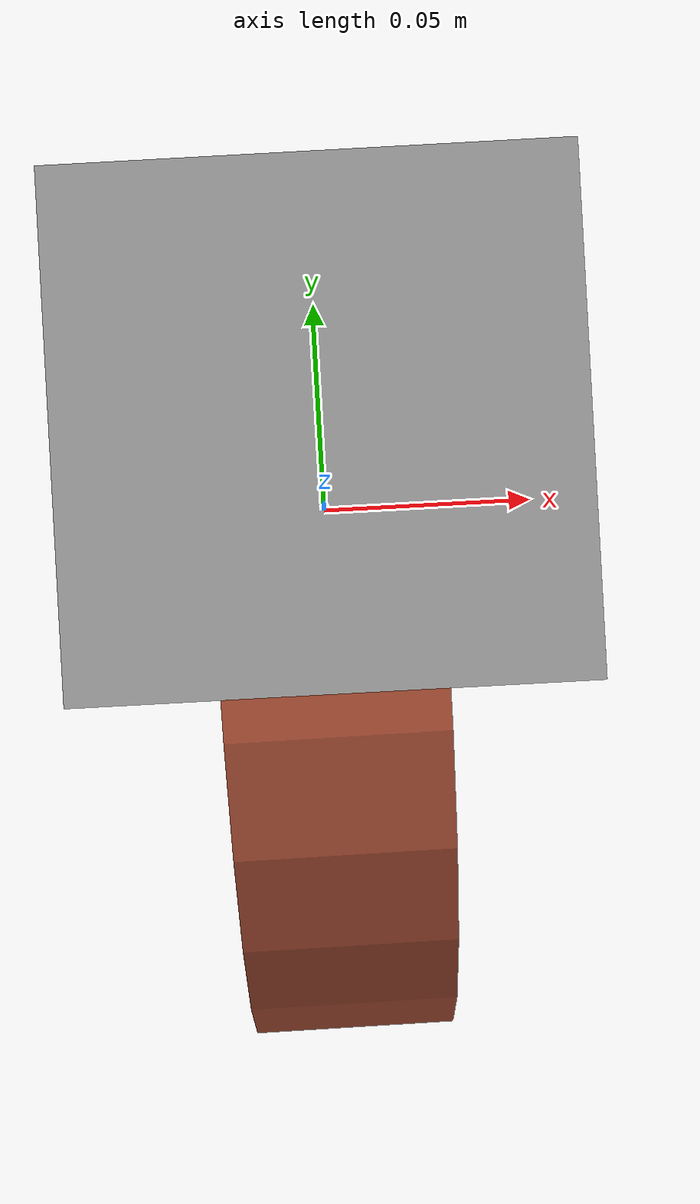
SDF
<?xml version='1.0'?>
<sdf version='1.6'>
  <model name='caster'>
    <link name='wheel'>
      <pose frame=''>0 -0.022667 -0.0642 1.56206 1.56968 1.56971</pose>
      <inertial>
        <mass>0.0113908</mass>
        <inertia>
          <ixx>8.202e-05</ixx>
          <ixy>0</ixy>
          <ixz>0</ixz>
          <iyy>8.202e-05</iyy>
          <iyz>0</iyz>
          <izz>0.00013772</izz>
        </inertia>
        <pose frame=''>0 0 0 0 -0 0</pose>
      </inertial>
      <gravity>1</gravity>
      <self_collide>0</self_collide>
      <kinematic>0</kinematic>
      <visual name='visual'>
        <pose frame=''>0 0 0 0 -0 0</pose>
        <geometry>
          <cylinder>
            <radius>0.114</radius>
            <length>0.0508</length>
          </cylinder>
        </geometry>
          <material>
            <lighting>1</lighting>
            <script>
              <uri>file://media/materials/scripts/gazebo.material</uri>
              <name>Gazebo/Bricks</name>
            </script>
            <shader type='vertex'>
              <normal_map>__default__</normal_map>
            </shader>
          </material>
        <transparency>0</transparency>
        <cast_shadows>1</cast_shadows>
      </visual>
      <collision name='collision_0'>
        <laser_retro>0</laser_retro>
        <max_contacts>10</max_contacts>
        <pose frame=''>0 0 0 0 -0 0</pose>
        <geometry>
          <cylinder>
            <radius>0.114</radius>
            <length>0.0508</length>
          </cylinder>
        </geometry>
        <surface>
          <friction>
            <ode>
              <mu>1</mu>
              <mu2>1</mu2>
              <fdir1>0 0 0</fdir1>
              <slip1>0</slip1>
              <slip2>0</slip2>
            </ode>
            <torsional>
              <coefficient>1</coefficient>
              <patch_radius>0</patch_radius>
              <surface_radius>0</surface_radius>
              <use_patch_radius>1</use_patch_radius>
              <ode>
                <slip>0</slip>
              </ode>
            </torsional>
          </friction>
          <bounce>
            <restitution_coefficient>0</restitution_coefficient>
            <threshold>1e+06</threshold>
          </bounce>
          <contact>
            <collide_without_contact>0</collide_without_contact>
            <collide_without_contact_bitmask>1</collide_without_contact_bitmask>
            <collide_bitmask>1</collide_bitmask>
            <ode>
              <soft_cfm>0</soft_cfm>
              <soft_erp>0.2</soft_erp>
              <kp>1e+13</kp>
              <kd>1</kd>
              <max_vel>0.01</max_vel>
              <min_depth>0</min_depth>
            </ode>
            <bullet>
              <split_impulse>1</split_impulse>
              <split_impulse_penetration_threshold>-0.01</split_impulse_penetration_threshold>
              <soft_cfm>0</soft_cfm>
              <soft_erp>0.2</soft_erp>
              <kp>1e+13</kp>
              <kd>1</kd>
            </bullet>
          </contact>
        </surface>
      </collision>

    </link>
    <link name='link_2'>
      <pose frame=''>0 0.007333 -0.0022 0 -0 0</pose>
      <inertial>
        <mass>0.00117716</mass>
        <inertia>
          <ixx>1.72e-06</ixx>
          <ixy>0</ixy>
          <ixz>0</ixz>
          <iyy>2.85e-06</iyy>
          <iyz>0</iyz>
          <izz>2.54e-06</izz>
        </inertia>
        <pose frame=''>0 0 0 0 -0 0</pose>
      </inertial>
      <gravity>1</gravity>
      <self_collide>0</self_collide>
      <kinematic>0</kinematic>
      <visual name='visual'>
        <pose frame=''>0 0 0 0 -0 0</pose>
        <geometry>
          <box>
            <size>0.1 0.05 0.13</size>
          </box>
        </geometry>
        <material>
          <lighting>1</lighting>
          <script>
            <uri>file://media/materials/scripts/gazebo.material</uri>
            <name>Gazebo/Grey</name>
          </script>
          <shader type='pixel'>
            <normal_map>__default__</normal_map>
          </shader>
          <ambient>0.3 0.3 0.3 1</ambient>
          <diffuse>0.7 0.7 0.7 1</diffuse>
          <specular>0.01 0.01 0.01 1</specular>
          <emissive>0 0 0 1</emissive>
        </material>
        <transparency>0</transparency>
        <cast_shadows>1</cast_shadows>
      </visual>
    </link>
    <link name='plate'>
      <pose frame=''>0 0.015333 0.0664 0 -0 0</pose>
      <inertial>
        <mass>0.00308684</mass>
        <inertia>
          <ixx>1.971e-05</ixx>
          <ixy>0</ixy>
          <ixz>0</ixz>
          <iyy>3.178e-05</iyy>
          <iyz>0</iyz>
          <izz>5.096e-05</izz>
        </inertia>
        <pose frame=''>0 0 0 0 -0 0</pose>
      </inertial>
      <gravity>1</gravity>
      <self_collide>0</self_collide>
      <kinematic>0</kinematic>
      <visual name='visual'>
        <pose frame=''>0 0 0 0 -0 0</pose>
        <geometry>
          <box>
            <size>0.114 0.114 0.0064</size>
          </box>
        </geometry>
        <material>
          <lighting>1</lighting>
          <script>
            <uri>file://media/materials/scripts/gazebo.material</uri>
            <name>Gazebo/Grey</name>
          </script>
          <shader type='pixel'>
            <normal_map>__default__</normal_map>
          </shader>
          <ambient>0.3 0.3 0.3 1</ambient>
          <diffuse>0.7 0.7 0.7 1</diffuse>
          <specular>0.01 0.01 0.01 1</specular>
          <emissive>0 0 0 1</emissive>
        </material>
        <transparency>0</transparency>
        <cast_shadows>1</cast_shadows>
      </visual>
    </link>
    <joint name='link_2_JOINT_1' type='revolute'>
      <parent>link_2</parent>
      <child>wheel</child>
      <pose frame=''>0 0 0 0 -0 0</pose>
      <axis>
        <xyz>0 0 1</xyz>
        <use_parent_model_frame>0</use_parent_model_frame>
        <limit>
          <lower>-1.79769e+308</lower>
          <upper>1.79769e+308</upper>
          <effort>-1</effort>
          <velocity>-1</velocity>
        </limit>
        <dynamics>
          <spring_reference>0</spring_reference>
          <spring_stiffness>0</spring_stiffness>
          <damping>0</damping>
        </dynamics>
      </axis>
      <physics>
        <ode>
          <limit>
            <cfm>0</cfm>
            <erp>0.2</erp>
          </limit>
          <suspension>
            <cfm>0</cfm>
            <erp>0.2</erp>
          </suspension>
        </ode>
      </physics>
    </joint>
    <joint name='link_3_JOINT_2' type='revolute'>
      <parent>link_2</parent>
      <child>plate</child>
      <pose frame=''>0 0 0 0 -0 0</pose>
      <axis>
        <xyz>0 0 1</xyz>
        <use_parent_model_frame>0</use_parent_model_frame>
        <limit>
          <lower>-1.79769e+308</lower>
          <upper>1.79769e+308</upper>
          <effort>-1</effort>
          <velocity>-1</velocity>
        </limit>
        <dynamics>
          <spring_reference>0</spring_reference>
          <spring_stiffness>0</spring_stiffness>
          <damping>0</damping>
        </dynamics>
      </axis>
      <physics>
        <ode>
          <limit>
            <cfm>0</cfm>
            <erp>0.2</erp>
          </limit>
          <suspension>
            <cfm>0</cfm>
            <erp>0.2</erp>
          </suspension>
        </ode>
      </physics>
    </joint>
    <static>0</static>
    <allow_auto_disable>1</allow_auto_disable>
  </model>
</sdf>
